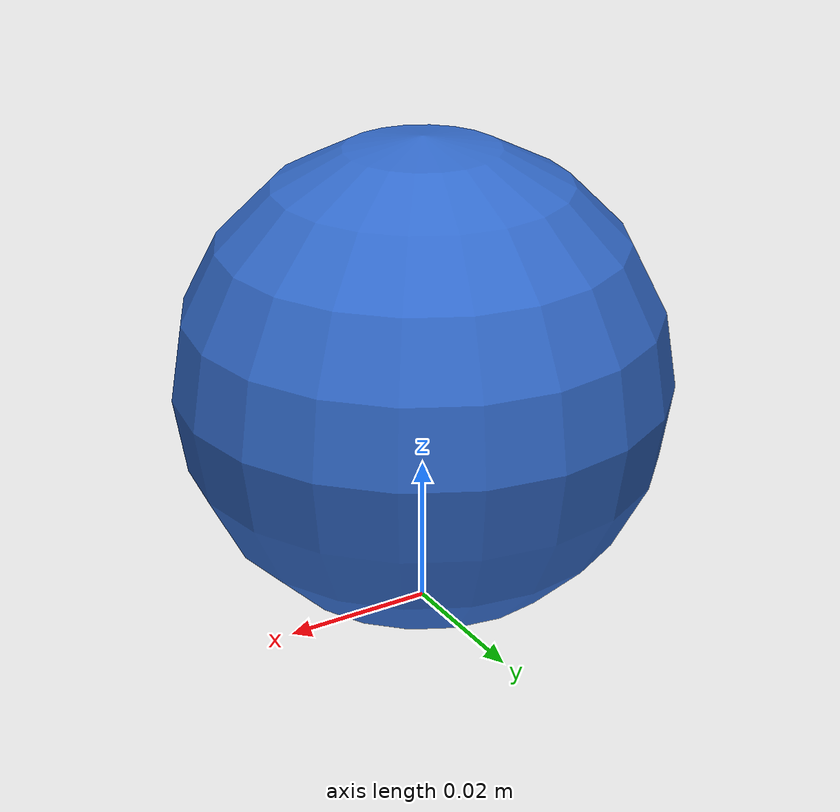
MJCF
<mujoco model="ball_prim_blue">
  <compiler angle="radian"/>
  <asset>
  </asset>
  <worldbody>
    <body name="ball_prim_blue">
      <freejoint/>
      <geom name="ball_prim_blue_g0" type="sphere" size="0.0325" pos="0 0 0.0325" rgba="0.2 0.42 0.8 1" mass="0.05" friction="0.05 0.05 0.005" condim="4"/>
    </body>
  </worldbody>
</mujoco>
